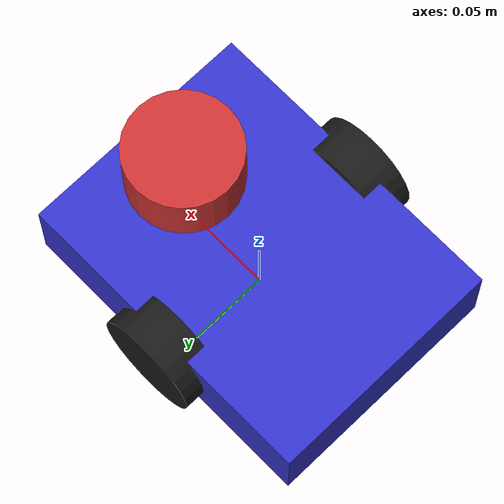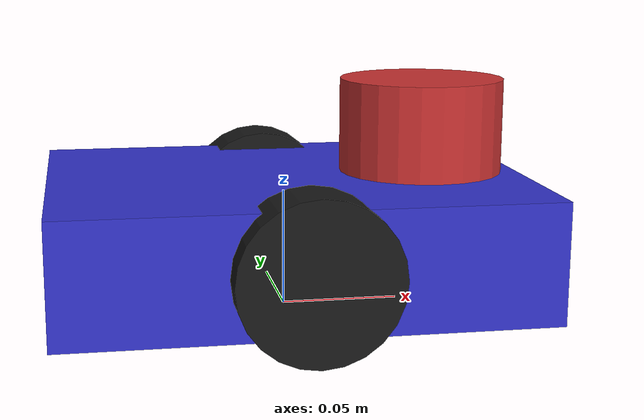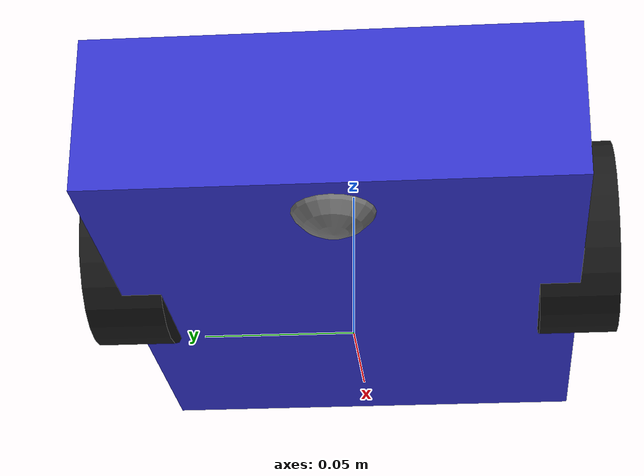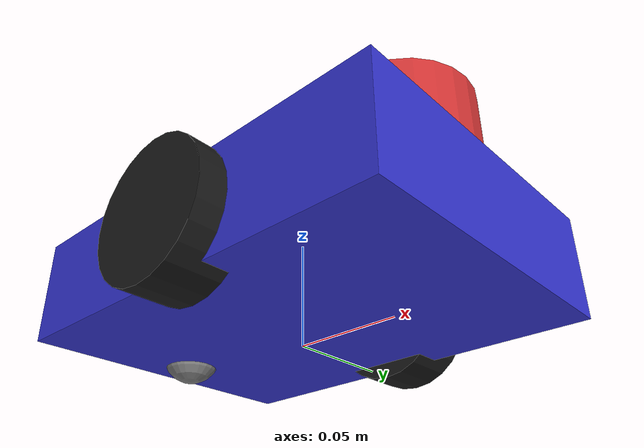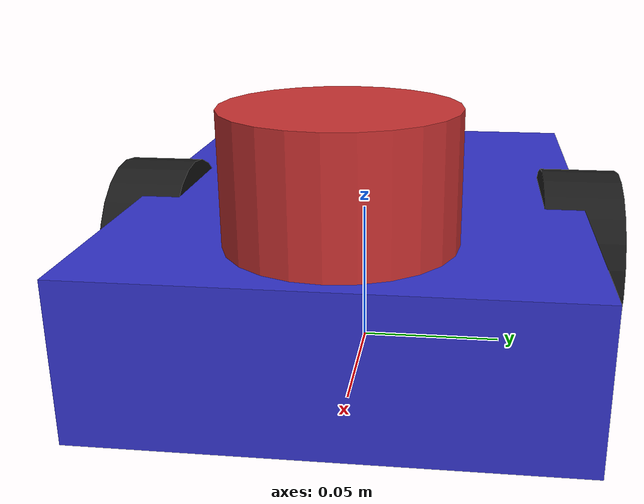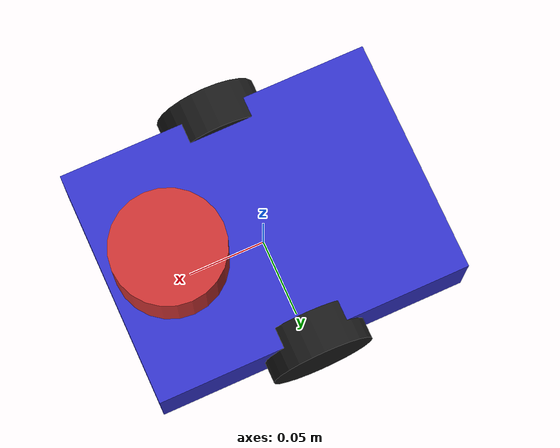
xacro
<?xml version="1.0"?>
<robot xmlns:xacro="http://www.ros.org/wiki/xacro" name="amr">

  <!-- Properties -->
  <xacro:property name="wheel_radius" value="0.0325"/>  <!-- 65mm Durchmesser -->
  <xacro:property name="wheel_width" value="0.026"/>
  <xacro:property name="wheel_separation" value="0.15"/>  <!-- Spurbreite -->
  <xacro:property name="chassis_length" value="0.20"/>
  <xacro:property name="chassis_width" value="0.15"/>
  <xacro:property name="chassis_height" value="0.05"/>

  <!-- Base Footprint (Bodenkontakt) -->
  <link name="base_footprint"/>

  <!-- Base Link (Chassis) -->
  <link name="base_link">
    <visual>
      <geometry>
        <box size="${chassis_length} ${chassis_width} ${chassis_height}"/>
      </geometry>
      <material name="blue">
        <color rgba="0.2 0.2 0.8 1.0"/>
      </material>
    </visual>
    <collision>
      <geometry>
        <box size="${chassis_length} ${chassis_width} ${chassis_height}"/>
      </geometry>
    </collision>
  </link>

  <joint name="base_footprint_joint" type="fixed">
    <parent link="base_footprint"/>
    <child link="base_link"/>
    <origin xyz="0 0 ${wheel_radius}" rpy="0 0 0"/>
  </joint>

  <!-- Left Wheel -->
  <link name="left_wheel">
    <visual>
      <geometry>
        <cylinder radius="${wheel_radius}" length="${wheel_width}"/>
      </geometry>
      <material name="black">
        <color rgba="0.1 0.1 0.1 1.0"/>
      </material>
    </visual>
  </link>

  <joint name="left_wheel_joint" type="continuous">
    <parent link="base_link"/>
    <child link="left_wheel"/>
    <origin xyz="0 ${wheel_separation/2} 0" rpy="${-pi/2} 0 0"/>
    <axis xyz="0 0 1"/>
  </joint>

  <!-- Right Wheel -->
  <link name="right_wheel">
    <visual>
      <geometry>
        <cylinder radius="${wheel_radius}" length="${wheel_width}"/>
      </geometry>
      <material name="black">
        <color rgba="0.1 0.1 0.1 1.0"/>
      </material>
    </visual>
  </link>

  <joint name="right_wheel_joint" type="continuous">
    <parent link="base_link"/>
    <child link="right_wheel"/>
    <origin xyz="0 ${-wheel_separation/2} 0" rpy="${-pi/2} 0 0"/>
    <axis xyz="0 0 1"/>
  </joint>

  <!-- Caster Wheel (Kugelrolle) -->
  <link name="caster_wheel">
    <visual>
      <geometry>
        <sphere radius="0.015"/>
      </geometry>
      <material name="grey">
        <color rgba="0.5 0.5 0.5 1.0"/>
      </material>
    </visual>
  </link>

  <joint name="caster_wheel_joint" type="fixed">
    <parent link="base_link"/>
    <child link="caster_wheel"/>
    <origin xyz="${-chassis_length/2 + 0.02} 0 ${-wheel_radius + 0.015}" rpy="0 0 0"/>
  </joint>

  <!-- LiDAR -->
  <link name="laser_frame">
    <visual>
      <geometry>
        <cylinder radius="0.035" length="0.04"/>
      </geometry>
      <material name="red">
        <color rgba="0.8 0.2 0.2 1.0"/>
      </material>
    </visual>
  </link>

  <joint name="laser_joint" type="fixed">
    <parent link="base_link"/>
    <child link="laser_frame"/>
    <origin xyz="${chassis_length/2 - 0.04} 0 ${chassis_height/2 + 0.02}" rpy="0 0 0"/>
  </joint>

  <!-- IMU -->
  <link name="imu_link"/>

  <joint name="imu_joint" type="fixed">
    <parent link="base_link"/>
    <child link="imu_link"/>
    <origin xyz="0 0 0" rpy="0 0 0"/>
  </joint>

</robot>
